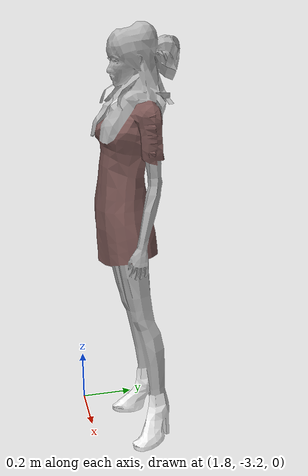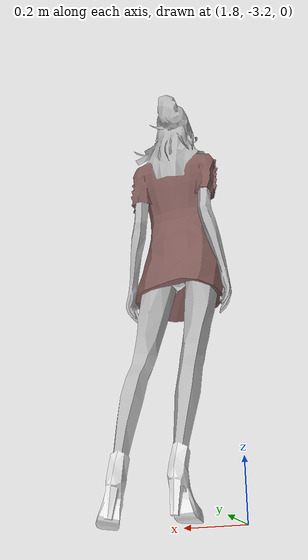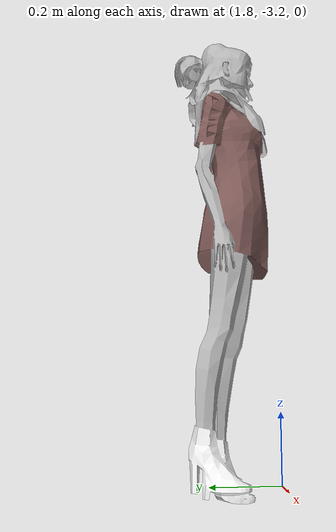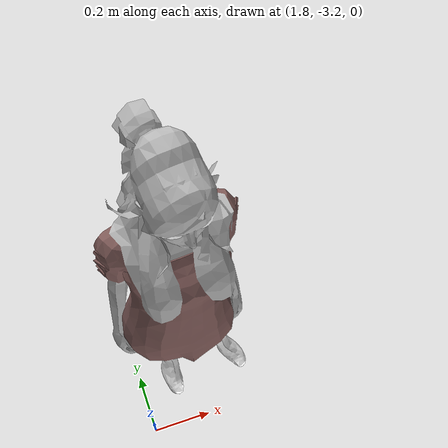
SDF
<?xml version='1.0'?>
<sdf version='1.5'>
  <model name='heat_victim_woman_orange_signature'>
    <static>true</static>
    <pose frame=''>2 -3 0 1.57 0 0</pose>
    <link name='defaultModel_0::custom_0'>
      <pose frame=''>0 0 0 0 0 0</pose>
      <gravity>1</gravity>
      <self_collide>0</self_collide>
      <kinematic>0</kinematic>
      <visual name='custom_0_visual'>
        <pose frame=''>0 0 0 0 -0 0</pose>
        <geometry>
          <mesh>
            <uri>model://heat_victim_woman_orange_signature/girl-brunette-dae/girl-brunette.dae</uri>
            <scale>1 1 1</scale>
          </mesh>
        </geometry>
      </visual>
      <collision name='custom_0_collision'>
        <geometry>
          <mesh>
            <uri>model://heat_victim_woman_orange_signature/girl-brunette-dae/girl-brunette.dae</uri>
            <scale>1 1 1</scale>
          </mesh>
        </geometry>
        <pose frame=''>0 0 0 0 0 0</pose>
      </collision>

    </link>

    <allow_auto_disable>1</allow_auto_disable>
  </model>
</sdf>
